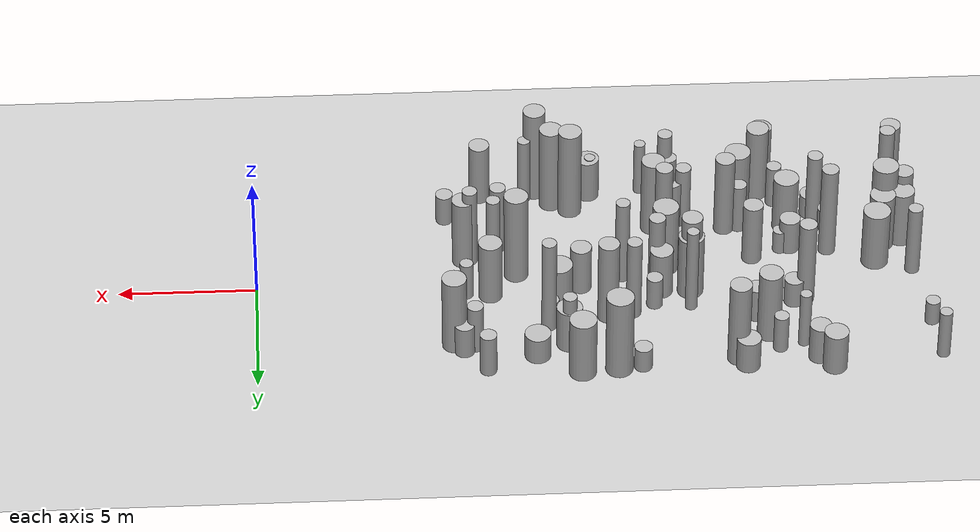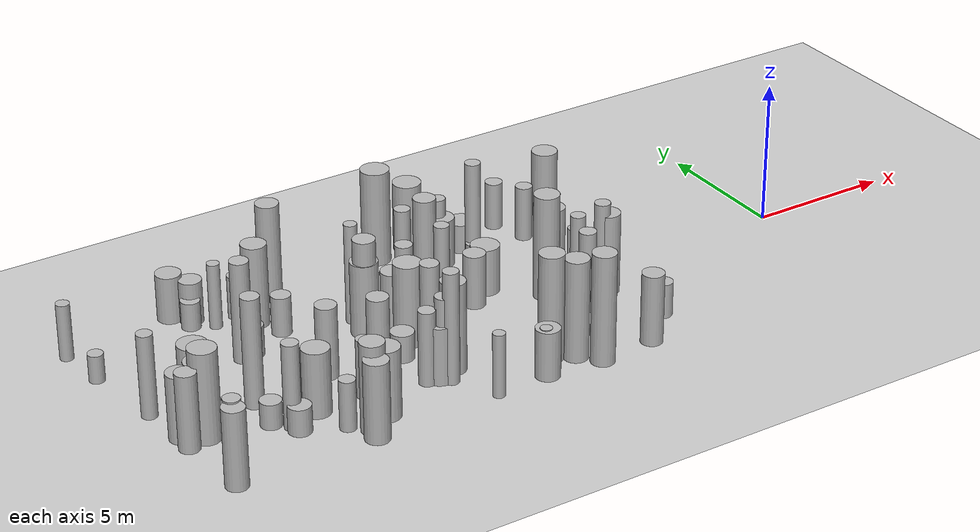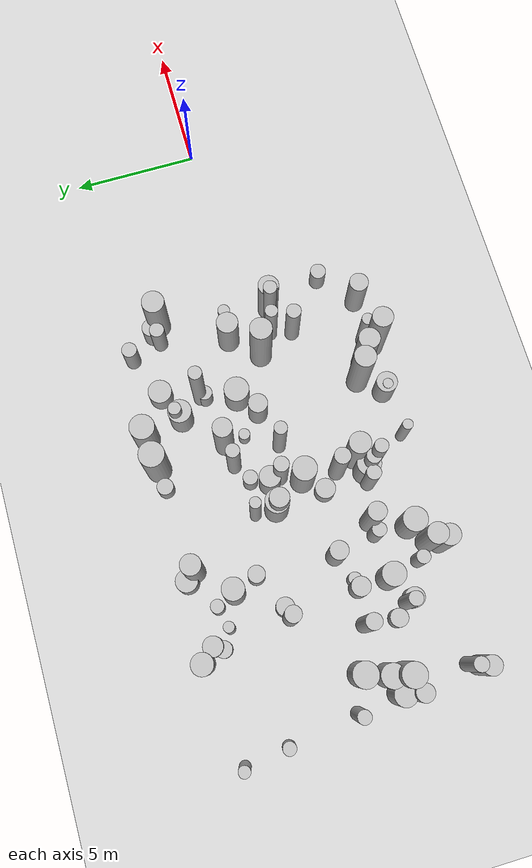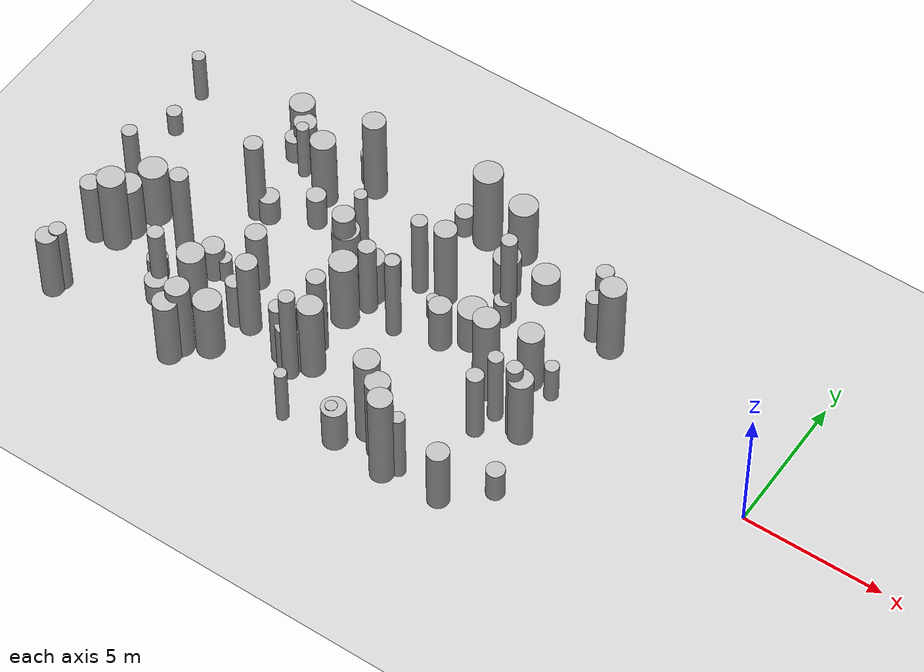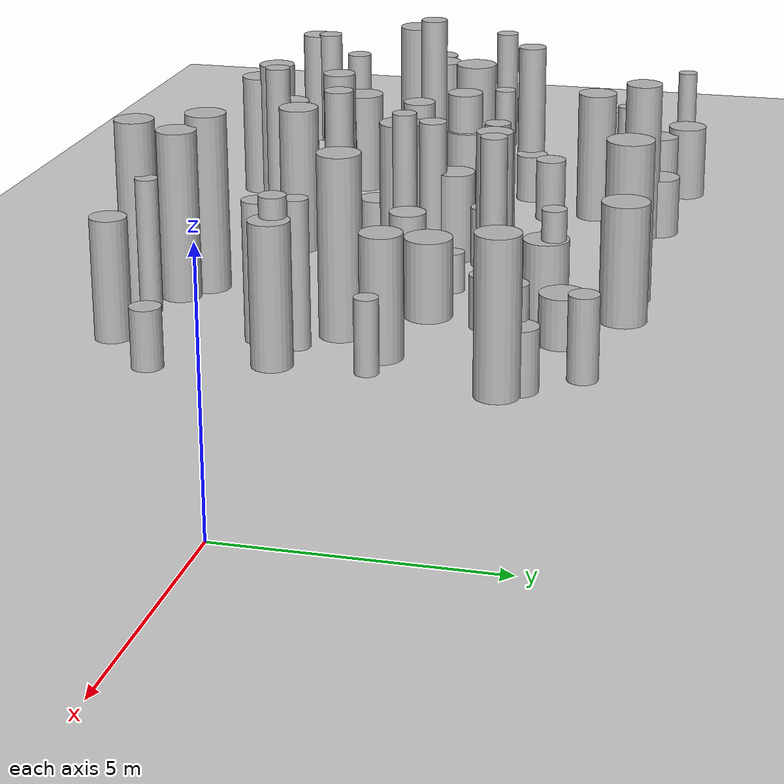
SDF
<sdf version="1.4">
 <world name="default">
  <include><uri>model://ground_plane</uri></include>
  <include><uri>model://sun</uri></include>
  <model name="forest">
   <static>true</static>
   <link name="cylinder2">
    <pose>-14.566319184506593 0.7028453761987299 0.9826855995600178 0 0 0</pose>
    <visual name="visual">
     <geometry>
      <cylinder><radius>0.42092513275544663</radius><length>1.9653711991200356</length></cylinder>
     </geometry>
    </visual>
    <collision name="collision">
     <geometry>
      <cylinder><radius>0.42092513275544663</radius><length>1.9653711991200356</length></cylinder>
     </geometry>
     <max_contacts>0</max_contacts>
    </collision>
   </link>
   <link name="cylinder8">
    <pose>-7.0236360223681125 3.224380381597209 1.5857802473510327 0 0 0</pose>
    <visual name="visual">
     <geometry>
      <cylinder><radius>0.4432136314929549</radius><length>3.1715604947020655</length></cylinder>
     </geometry>
    </visual>
    <collision name="collision">
     <geometry>
      <cylinder><radius>0.4432136314929549</radius><length>3.1715604947020655</length></cylinder>
     </geometry>
     <max_contacts>0</max_contacts>
    </collision>
   </link>
   <link name="cylinder18">
    <pose>-10.430794908742518 2.4155092818971093 1.9922489770107052 0 0 0</pose>
    <visual name="visual">
     <geometry>
      <cylinder><radius>0.26564784858792667</radius><length>3.9844979540214105</length></cylinder>
     </geometry>
    </visual>
    <collision name="collision">
     <geometry>
      <cylinder><radius>0.26564784858792667</radius><length>3.9844979540214105</length></cylinder>
     </geometry>
     <max_contacts>0</max_contacts>
    </collision>
   </link>
   <link name="cylinder23">
    <pose>-11.113900278116361 3.506994385561457 1.1926996139202175 0 0 0</pose>
    <visual name="visual">
     <geometry>
      <cylinder><radius>0.25347930996211976</radius><length>2.385399227840435</length></cylinder>
     </geometry>
    </visual>
    <collision name="collision">
     <geometry>
      <cylinder><radius>0.25347930996211976</radius><length>2.385399227840435</length></cylinder>
     </geometry>
     <max_contacts>0</max_contacts>
    </collision>
   </link>
   <link name="cylinder24">
    <pose>-12.494464114637355 1.1501678156684978 0.4267576999208971 0 0 0</pose>
    <visual name="visual">
     <geometry>
      <cylinder><radius>0.22525729497200683</radius><length>0.8535153998417943</length></cylinder>
     </geometry>
    </visual>
    <collision name="collision">
     <geometry>
      <cylinder><radius>0.22525729497200683</radius><length>0.8535153998417943</length></cylinder>
     </geometry>
     <max_contacts>0</max_contacts>
    </collision>
   </link>
   <link name="cylinder30">
    <pose>-9.961078980103949 3.9041506113809135 0.5276463428228065 0 0 0</pose>
    <visual name="visual">
     <geometry>
      <cylinder><radius>0.47039764107652066</radius><length>1.055292685645613</length></cylinder>
     </geometry>
    </visual>
    <collision name="collision">
     <geometry>
      <cylinder><radius>0.47039764107652066</radius><length>1.055292685645613</length></cylinder>
     </geometry>
     <max_contacts>0</max_contacts>
    </collision>
   </link>
   <link name="cylinder33">
    <pose>-11.503773523743948 -3.86456465136495 1.8933477084865609 0 0 0</pose>
    <visual name="visual">
     <geometry>
      <cylinder><radius>0.4279755908942054</radius><length>3.7866954169731217</length></cylinder>
     </geometry>
    </visual>
    <collision name="collision">
     <geometry>
      <cylinder><radius>0.4279755908942054</radius><length>3.7866954169731217</length></cylinder>
     </geometry>
     <max_contacts>0</max_contacts>
    </collision>
   </link>
   <link name="cylinder37">
    <pose>-14.919958367531716 -3.377166467839172 1.9728194324279933 0 0 0</pose>
    <visual name="visual">
     <geometry>
      <cylinder><radius>0.2671299328466602</radius><length>3.9456388648559866</length></cylinder>
     </geometry>
    </visual>
    <collision name="collision">
     <geometry>
      <cylinder><radius>0.2671299328466602</radius><length>3.9456388648559866</length></cylinder>
     </geometry>
     <max_contacts>0</max_contacts>
    </collision>
   </link>
   <link name="cylinder40">
    <pose>-19.003075502211548 -3.975678212042615 0.871332757629638 0 0 0</pose>
    <visual name="visual">
     <geometry>
      <cylinder><radius>0.2714177743334837</radius><length>1.742665515259276</length></cylinder>
     </geometry>
    </visual>
    <collision name="collision">
     <geometry>
      <cylinder><radius>0.2714177743334837</radius><length>1.742665515259276</length></cylinder>
     </geometry>
     <max_contacts>0</max_contacts>
    </collision>
   </link>
   <link name="cylinder43">
    <pose>-14.471069798430447 -2.783552739605298 1.6023824915551828 0 0 0</pose>
    <visual name="visual">
     <geometry>
      <cylinder><radius>0.42628796045596007</radius><length>3.2047649831103655</length></cylinder>
     </geometry>
    </visual>
    <collision name="collision">
     <geometry>
      <cylinder><radius>0.42628796045596007</radius><length>3.2047649831103655</length></cylinder>
     </geometry>
     <max_contacts>0</max_contacts>
    </collision>
   </link>
   <link name="cylinder45">
    <pose>-15.134815938974638 -3.0454822984439778 1.0191008471254641 0 0 0</pose>
    <visual name="visual">
     <geometry>
      <cylinder><radius>0.47265679621448126</radius><length>2.0382016942509282</length></cylinder>
     </geometry>
    </visual>
    <collision name="collision">
     <geometry>
      <cylinder><radius>0.47265679621448126</radius><length>2.0382016942509282</length></cylinder>
     </geometry>
     <max_contacts>0</max_contacts>
    </collision>
   </link>
   <link name="cylinder48">
    <pose>-17.614040983702385 -2.6518937314884603 1.025482181448625 0 0 0</pose>
    <visual name="visual">
     <geometry>
      <cylinder><radius>0.28169031691605056</radius><length>2.05096436289725</length></cylinder>
     </geometry>
    </visual>
    <collision name="collision">
     <geometry>
      <cylinder><radius>0.28169031691605056</radius><length>2.05096436289725</length></cylinder>
     </geometry>
     <max_contacts>0</max_contacts>
    </collision>
   </link>
   <link name="cylinder50">
    <pose>-23.339157137945804 -4.9439633344894816 1.3639078894915722 0 0 0</pose>
    <visual name="visual">
     <geometry>
      <cylinder><radius>0.37375193587891997</radius><length>2.7278157789831443</length></cylinder>
     </geometry>
    </visual>
    <collision name="collision">
     <geometry>
      <cylinder><radius>0.37375193587891997</radius><length>2.7278157789831443</length></cylinder>
     </geometry>
     <max_contacts>0</max_contacts>
    </collision>
   </link>
   <link name="cylinder53">
    <pose>-23.48289043818395 -1.7341038883323856 1.1600301535751878 0 0 0</pose>
    <visual name="visual">
     <geometry>
      <cylinder><radius>0.4289087387838289</radius><length>2.3200603071503756</length></cylinder>
     </geometry>
    </visual>
    <collision name="collision">
     <geometry>
      <cylinder><radius>0.4289087387838289</radius><length>2.3200603071503756</length></cylinder>
     </geometry>
     <max_contacts>0</max_contacts>
    </collision>
   </link>
   <link name="cylinder55">
    <pose>-19.306139237631708 1.4754266966918284 0.5423400526042698 0 0 0</pose>
    <visual name="visual">
     <geometry>
      <cylinder><radius>0.3595567008579257</radius><length>1.0846801052085395</length></cylinder>
     </geometry>
    </visual>
    <collision name="collision">
     <geometry>
      <cylinder><radius>0.3595567008579257</radius><length>1.0846801052085395</length></cylinder>
     </geometry>
     <max_contacts>0</max_contacts>
    </collision>
   </link>
   <link name="cylinder63">
    <pose>-19.390649685770157 -1.443232406159173 0.7014354620296043 0 0 0</pose>
    <visual name="visual">
     <geometry>
      <cylinder><radius>0.37918107197054185</radius><length>1.4028709240592085</length></cylinder>
     </geometry>
    </visual>
    <collision name="collision">
     <geometry>
      <cylinder><radius>0.37918107197054185</radius><length>1.4028709240592085</length></cylinder>
     </geometry>
     <max_contacts>0</max_contacts>
    </collision>
   </link>
   <link name="cylinder68">
    <pose>-14.423027307600734 0.23832079863513655 1.5465362854627644 0 0 0</pose>
    <visual name="visual">
     <geometry>
      <cylinder><radius>0.2976358405482731</radius><length>3.093072570925529</length></cylinder>
     </geometry>
    </visual>
    <collision name="collision">
     <geometry>
      <cylinder><radius>0.2976358405482731</radius><length>3.093072570925529</length></cylinder>
     </geometry>
     <max_contacts>0</max_contacts>
    </collision>
   </link>
   <link name="cylinder69">
    <pose>-20.165813965108065 4.0985370996202395 0.49663304973153194 0 0 0</pose>
    <visual name="visual">
     <geometry>
      <cylinder><radius>0.32675639379643207</radius><length>0.9932660994630639</length></cylinder>
     </geometry>
    </visual>
    <collision name="collision">
     <geometry>
      <cylinder><radius>0.32675639379643207</radius><length>0.9932660994630639</length></cylinder>
     </geometry>
     <max_contacts>0</max_contacts>
    </collision>
   </link>
   <link name="cylinder70">
    <pose>-20.868031552643117 -2.533850455858669 0.44335175028623147 0 0 0</pose>
    <visual name="visual">
     <geometry>
      <cylinder><radius>0.35519821692867615</radius><length>0.8867035005724629</length></cylinder>
     </geometry>
    </visual>
    <collision name="collision">
     <geometry>
      <cylinder><radius>0.35519821692867615</radius><length>0.8867035005724629</length></cylinder>
     </geometry>
     <max_contacts>0</max_contacts>
    </collision>
   </link>
   <link name="cylinder71">
    <pose>-20.391767346869727 -3.0314551996646575 1.4980999452841675 0 0 0</pose>
    <visual name="visual">
     <geometry>
      <cylinder><radius>0.2773907891345589</radius><length>2.996199890568335</length></cylinder>
     </geometry>
    </visual>
    <collision name="collision">
     <geometry>
      <cylinder><radius>0.2773907891345589</radius><length>2.996199890568335</length></cylinder>
     </geometry>
     <max_contacts>0</max_contacts>
    </collision>
   </link>
   <link name="cylinder73">
    <pose>-7.370926659879757 3.579654666507505 0.6430692436108179 0 0 0</pose>
    <visual name="visual">
     <geometry>
      <cylinder><radius>0.3636783163257552</radius><length>1.2861384872216357</length></cylinder>
     </geometry>
    </visual>
    <collision name="collision">
     <geometry>
      <cylinder><radius>0.3636783163257552</radius><length>1.2861384872216357</length></cylinder>
     </geometry>
     <max_contacts>0</max_contacts>
    </collision>
   </link>
   <link name="cylinder77">
    <pose>-19.963547473010497 4.448358914176726 0.767138783690235 0 0 0</pose>
    <visual name="visual">
     <geometry>
      <cylinder><radius>0.39100425804760275</radius><length>1.53427756738047</length></cylinder>
     </geometry>
    </visual>
    <collision name="collision">
     <geometry>
      <cylinder><radius>0.39100425804760275</radius><length>1.53427756738047</length></cylinder>
     </geometry>
     <max_contacts>0</max_contacts>
    </collision>
   </link>
   <link name="cylinder78">
    <pose>-13.20160754078895 -0.0830493010089377 1.7875002070733899 0 0 0</pose>
    <visual name="visual">
     <geometry>
      <cylinder><radius>0.2561081950243054</radius><length>3.5750004141467797</length></cylinder>
     </geometry>
    </visual>
    <collision name="collision">
     <geometry>
      <cylinder><radius>0.2561081950243054</radius><length>3.5750004141467797</length></cylinder>
     </geometry>
     <max_contacts>0</max_contacts>
    </collision>
   </link>
   <link name="cylinder79">
    <pose>-8.78022704950251 -1.9174426073536264 1.4422593523172762 0 0 0</pose>
    <visual name="visual">
     <geometry>
      <cylinder><radius>0.29280142427542655</radius><length>2.8845187046345524</length></cylinder>
     </geometry>
    </visual>
    <collision name="collision">
     <geometry>
      <cylinder><radius>0.29280142427542655</radius><length>2.8845187046345524</length></cylinder>
     </geometry>
     <max_contacts>0</max_contacts>
    </collision>
   </link>
   <link name="cylinder80">
    <pose>-15.057319476177494 -3.1597643583015 1.50444465342989 0 0 0</pose>
    <visual name="visual">
     <geometry><cylinder><radius>0.2894952948640372</radius><length>3.00888930685978</length></cylinder></geometry>
    </visual>
    <collision name="collision">
     <geometry><cylinder><radius>0.2894952948640372</radius><length>3.00888930685978</length></cylinder></geometry>
     <max_contacts>0</max_contacts>
    </collision>
   </link>
   <link name="cylinder84">
    <pose>-7.510002033769503 -1.2627982842625673 1.4591379763917094 0 0 0</pose>
    <visual name="visual">
     <geometry>
      <cylinder><radius>0.40943335809178305</radius><length>2.918275952783419</length></cylinder>
     </geometry>
    </visual>
    <collision name="collision">
     <geometry>
      <cylinder><radius>0.40943335809178305</radius><length>2.918275952783419</length></cylinder>
     </geometry>
     <max_contacts>0</max_contacts>
    </collision>
   </link>
   <link name="cylinder85">
    <pose>-22.428810283844424 -0.5667853174805417 1.202391158538445 0 0 0</pose>
    <visual name="visual">
     <geometry><cylinder><radius>0.4937334557329827</radius><length>2.40478231707689</length></cylinder></geometry>
    </visual>
    <collision name="collision">
     <geometry><cylinder><radius>0.4937334557329827</radius><length>2.40478231707689</length></cylinder></geometry>
     <max_contacts>0</max_contacts>
    </collision>
   </link>
   <link name="cylinder89">
    <pose>-11.113264922677535 3.3518798816660773 0.8726313053198396 0 0 0</pose>
    <visual name="visual">
     <geometry>
      <cylinder><radius>0.4664649839996773</radius><length>1.7452626106396791</length></cylinder>
     </geometry>
    </visual>
    <collision name="collision">
     <geometry>
      <cylinder><radius>0.4664649839996773</radius><length>1.7452626106396791</length></cylinder>
     </geometry>
     <max_contacts>0</max_contacts>
    </collision>
   </link>
   <link name="cylinder91">
    <pose>-10.250745611023454 -4.932685812237344 1.9586394836863317 0 0 0</pose>
    <visual name="visual">
     <geometry>
      <cylinder><radius>0.4076547631145858</radius><length>3.9172789673726633</length></cylinder>
     </geometry>
    </visual>
    <collision name="collision">
     <geometry>
      <cylinder><radius>0.4076547631145858</radius><length>3.9172789673726633</length></cylinder>
     </geometry>
     <max_contacts>0</max_contacts>
    </collision>
   </link>
   <link name="cylinder92">
    <pose>-12.578372749424133 1.9805506755536149 1.739251106344664 0 0 0</pose>
    <visual name="visual">
     <geometry>
      <cylinder><radius>0.3822702057000762</radius><length>3.478502212689328</length></cylinder>
     </geometry>
    </visual>
    <collision name="collision">
     <geometry>
      <cylinder><radius>0.3822702057000762</radius><length>3.478502212689328</length></cylinder>
     </geometry>
     <max_contacts>0</max_contacts>
    </collision>
   </link>
   <link name="cylinder95">
    <pose>-17.976783387011825 -0.9387285256849065 1.2737165180536838 0 0 0</pose>
    <visual name="visual">
     <geometry>
      <cylinder><radius>0.3621169185394072</radius><length>2.5474330361073676</length></cylinder>
     </geometry>
    </visual>
    <collision name="collision">
     <geometry>
      <cylinder><radius>0.3621169185394072</radius><length>2.5474330361073676</length></cylinder>
     </geometry>
     <max_contacts>0</max_contacts>
    </collision>
   </link>
   <link name="cylinder97">
    <pose>-19.025995021560266 -1.3533691423489569 0.4696846900667888 0 0 0</pose>
    <visual name="visual">
     <geometry>
      <cylinder><radius>0.25177067801897535</radius><length>0.9393693801335776</length></cylinder>
     </geometry>
    </visual>
    <collision name="collision">
     <geometry>
      <cylinder><radius>0.25177067801897535</radius><length>0.9393693801335776</length></cylinder>
     </geometry>
     <max_contacts>0</max_contacts>
    </collision>
   </link>
   <link name="cylinder108">
    <pose>-18.268168410941616 3.171330956501059 1.4633586836667556 0 0 0</pose>
    <visual name="visual">
     <geometry>
      <cylinder><radius>0.43181546055714903</radius><length>2.926717367333511</length></cylinder>
     </geometry>
    </visual>
    <collision name="collision">
     <geometry>
      <cylinder><radius>0.43181546055714903</radius><length>2.926717367333511</length></cylinder>
     </geometry>
     <max_contacts>0</max_contacts>
    </collision>
   </link>
   <link name="cylinder111">
    <pose>-23.574563466632707 -2.379174157336098 1.3429333947595075 0 0 0</pose>
    <visual name="visual">
     <geometry>
      <cylinder><radius>0.34812483642246767</radius><length>2.685866789519015</length></cylinder>
     </geometry>
    </visual>
    <collision name="collision">
     <geometry>
      <cylinder><radius>0.34812483642246767</radius><length>2.685866789519015</length></cylinder>
     </geometry>
     <max_contacts>0</max_contacts>
    </collision>
   </link>
   <link name="cylinder117">
    <pose>-12.210336348332284 -4.729263539588812 0.871427749418527 0 0 0</pose>
    <visual name="visual">
     <geometry>
      <cylinder><radius>0.41497765760517946</radius><length>1.742855498837054</length></cylinder>
     </geometry>
    </visual>
    <collision name="collision">
     <geometry>
      <cylinder><radius>0.41497765760517946</radius><length>1.742855498837054</length></cylinder>
     </geometry>
     <max_contacts>0</max_contacts>
    </collision>
   </link>
   <link name="cylinder120">
    <pose>-14.818770475129849 -1.9667693017113819 1.7720636650846833 0 0 0</pose>
    <visual name="visual">
     <geometry>
      <cylinder><radius>0.3161957747777382</radius><length>3.5441273301693665</length></cylinder>
     </geometry>
    </visual>
    <collision name="collision">
     <geometry>
      <cylinder><radius>0.3161957747777382</radius><length>3.5441273301693665</length></cylinder>
     </geometry>
     <max_contacts>0</max_contacts>
    </collision>
   </link>
   <link name="cylinder121">
    <pose>-8.583823939126876 -1.0687244335817523 1.5201878213966775 0 0 0</pose>
    <visual name="visual">
     <geometry>
      <cylinder><radius>0.25202554625719364</radius><length>3.040375642793355</length></cylinder>
     </geometry>
    </visual>
    <collision name="collision">
     <geometry>
      <cylinder><radius>0.25202554625719364</radius><length>3.040375642793355</length></cylinder>
     </geometry>
     <max_contacts>0</max_contacts>
    </collision>
   </link>
   <link name="cylinder126">
    <pose>-6.893795895478288 -3.5553254540981127 0.6147771614823789 0 0 0</pose>
    <visual name="visual">
     <geometry>
      <cylinder><radius>0.31422826179308927</radius><length>1.2295543229647579</length></cylinder>
     </geometry>
    </visual>
    <collision name="collision">
     <geometry>
      <cylinder><radius>0.31422826179308927</radius><length>1.2295543229647579</length></cylinder>
     </geometry>
     <max_contacts>0</max_contacts>
    </collision>
   </link>
   <link name="cylinder127">
    <pose>-20.309012653078966 -3.327698220587463 0.4731001317668506 0 0 0</pose>
    <visual name="visual">
     <geometry>
      <cylinder><radius>0.38576065474667487</radius><length>0.9462002635337012</length></cylinder>
     </geometry>
    </visual>
    <collision name="collision">
     <geometry>
      <cylinder><radius>0.38576065474667487</radius><length>0.9462002635337012</length></cylinder>
     </geometry>
     <max_contacts>0</max_contacts>
    </collision>
   </link>
   <link name="cylinder129">
    <pose>-19.727770952109424 1.366550793281319 1.7839110162736556 0 0 0</pose>
    <visual name="visual">
     <geometry>
      <cylinder><radius>0.31844904528082896</radius><length>3.567822032547311</length></cylinder>
     </geometry>
    </visual>
    <collision name="collision">
     <geometry>
      <cylinder><radius>0.31844904528082896</radius><length>3.567822032547311</length></cylinder>
     </geometry>
     <max_contacts>0</max_contacts>
    </collision>
   </link>
   <link name="cylinder131">
    <pose>-8.174026665530263 4.625425480524498 0.8560704872950384 0 0 0</pose>
    <visual name="visual">
     <geometry>
      <cylinder><radius>0.302341733934067</radius><length>1.7121409745900769</length></cylinder>
     </geometry>
    </visual>
    <collision name="collision">
     <geometry>
      <cylinder><radius>0.302341733934067</radius><length>1.7121409745900769</length></cylinder>
     </geometry>
     <max_contacts>0</max_contacts>
    </collision>
   </link>
   <link name="cylinder132">
    <pose>-22.87027256815428 -2.1393260160152394 1.5907511105326373 0 0 0</pose>
    <visual name="visual">
     <geometry><cylinder><radius>0.46964006162672</radius><length>3.1815022210652746</length></cylinder></geometry>
    </visual>
    <collision name="collision">
     <geometry><cylinder><radius>0.46964006162672</radius><length>3.1815022210652746</length></cylinder></geometry>
     <max_contacts>0</max_contacts>
    </collision>
   </link>
   <link name="cylinder135">
    <pose>-8.409974540224152 0.6639880296789613 1.2673934897321573 0 0 0</pose>
    <visual name="visual">
     <geometry>
      <cylinder><radius>0.42849703232983205</radius><length>2.5347869794643145</length></cylinder>
     </geometry>
    </visual>
    <collision name="collision">
     <geometry>
      <cylinder><radius>0.42849703232983205</radius><length>2.5347869794643145</length></cylinder>
     </geometry>
     <max_contacts>0</max_contacts>
    </collision>
   </link>
   <link name="cylinder143">
    <pose>-17.651466216278976 -3.99394072571151 1.2354823075098285 0 0 0</pose>
    <visual name="visual">
     <geometry>
      <cylinder><radius>0.4750634753894425</radius><length>2.470964615019657</length></cylinder>
     </geometry>
    </visual>
    <collision name="collision">
     <geometry>
      <cylinder><radius>0.4750634753894425</radius><length>2.470964615019657</length></cylinder>
     </geometry>
     <max_contacts>0</max_contacts>
    </collision>
   </link>
   <link name="cylinder144">
    <pose>-12.287884584385688 -4.74308516855319 0.8848568027248198 0 0 0</pose>
    <visual name="visual">
     <geometry>
      <cylinder><radius>0.2017451877043584</radius><length>1.7697136054496396</length></cylinder>
     </geometry>
    </visual>
    <collision name="collision">
     <geometry>
      <cylinder><radius>0.2017451877043584</radius><length>1.7697136054496396</length></cylinder>
     </geometry>
     <max_contacts>0</max_contacts>
    </collision>
   </link>
   <link name="cylinder146">
    <pose>-7.555263443492592 0.5959147566698206 0.7655064027431845 0 0 0</pose>
    <visual name="visual">
     <geometry>
      <cylinder><radius>0.24103096129681448</radius><length>1.531012805486369</length></cylinder>
     </geometry>
    </visual>
    <collision name="collision">
     <geometry>
      <cylinder><radius>0.24103096129681448</radius><length>1.531012805486369</length></cylinder>
     </geometry>
     <max_contacts>0</max_contacts>
    </collision>
   </link>
   <link name="cylinder147">
    <pose>-17.396172859261846 4.773335782903752 0.6547714166977511 0 0 0</pose>
    <visual name="visual">
     <geometry>
      <cylinder><radius>0.43415032356084005</radius><length>1.3095428333955021</length></cylinder>
     </geometry>
    </visual>
    <collision name="collision">
     <geometry>
      <cylinder><radius>0.43415032356084005</radius><length>1.3095428333955021</length></cylinder>
     </geometry>
     <max_contacts>0</max_contacts>
    </collision>
   </link>
   <link name="cylinder152">
    <pose>-18.41081773173951 -4.502397251535547 1.5663914219982376 0 0 0</pose>
    <visual name="visual">
     <geometry>
      <cylinder><radius>0.4084830828362166</radius><length>3.132782843996475</length></cylinder>
     </geometry>
    </visual>
    <collision name="collision">
     <geometry>
      <cylinder><radius>0.4084830828362166</radius><length>3.132782843996475</length></cylinder>
     </geometry>
     <max_contacts>0</max_contacts>
    </collision>
   </link>
   <link name="cylinder153">
    <pose>-8.222639069351729 -4.762324186103532 1.2529639550579574 0 0 0</pose>
    <visual name="visual">
     <geometry>
      <cylinder><radius>0.37575212639952493</radius><length>2.505927910115915</length></cylinder>
     </geometry>
    </visual>
    <collision name="collision">
     <geometry>
      <cylinder><radius>0.37575212639952493</radius><length>2.505927910115915</length></cylinder>
     </geometry>
     <max_contacts>0</max_contacts>
    </collision>
   </link>
   <link name="cylinder154">
    <pose>-17.882169820118193 2.1873923330187424 0.7000254766229305 0 0 0</pose>
    <visual name="visual">
     <geometry>
      <cylinder><radius>0.3367247694638602</radius><length>1.400050953245861</length></cylinder>
     </geometry>
    </visual>
    <collision name="collision">
     <geometry>
      <cylinder><radius>0.3367247694638602</radius><length>1.400050953245861</length></cylinder>
     </geometry>
     <max_contacts>0</max_contacts>
    </collision>
   </link>
   <link name="cylinder157">
    <pose>-7.760363853920143 3.374963769200848 0.9856334205525529 0 0 0</pose>
    <visual name="visual">
     <geometry>
      <cylinder><radius>0.2913978792573846</radius><length>1.9712668411051057</length></cylinder>
     </geometry>
    </visual>
    <collision name="collision">
     <geometry>
      <cylinder><radius>0.2913978792573846</radius><length>1.9712668411051057</length></cylinder>
     </geometry>
     <max_contacts>0</max_contacts>
    </collision>
   </link>
   <link name="cylinder158">
    <pose>-14.787205269408005 -0.5603697185603842 1.4601696375674305 0 0 0</pose>
    <visual name="visual">
     <geometry>
      <cylinder><radius>0.47323315872910215</radius><length>2.920339275134861</length></cylinder>
     </geometry>
    </visual>
    <collision name="collision">
     <geometry>
      <cylinder><radius>0.47323315872910215</radius><length>2.920339275134861</length></cylinder>
     </geometry>
     <max_contacts>0</max_contacts>
    </collision>
   </link>
   <link name="cylinder168">
    <pose>-18.560359831721822 -4.978163594834073 1.3909507512964157 0 0 0</pose>
    <visual name="visual">
     <geometry>
      <cylinder><radius>0.4137922064071647</radius><length>2.7819015025928313</length></cylinder>
     </geometry>
    </visual>
    <collision name="collision">
     <geometry>
      <cylinder><radius>0.4137922064071647</radius><length>2.7819015025928313</length></cylinder>
     </geometry>
     <max_contacts>0</max_contacts>
    </collision>
   </link>
   <link name="cylinder170">
    <pose>-10.509499041535042 2.2132279809383455 0.5538503303645363 0 0 0</pose>
    <visual name="visual">
     <geometry>
      <cylinder><radius>0.2958771820832027</radius><length>1.1077006607290727</length></cylinder>
     </geometry>
    </visual>
    <collision name="collision">
     <geometry>
      <cylinder><radius>0.2958771820832027</radius><length>1.1077006607290727</length></cylinder>
     </geometry>
     <max_contacts>0</max_contacts>
    </collision>
   </link>
   <link name="cylinder175">
    <pose>-14.1297060248955 -4.884116690029226 1.1181676161608032 0 0 0</pose>
    <visual name="visual">
     <geometry>
      <cylinder><radius>0.20801738723194005</radius><length>2.2363352323216064</length></cylinder>
     </geometry>
    </visual>
    <collision name="collision">
     <geometry>
      <cylinder><radius>0.20801738723194005</radius><length>2.2363352323216064</length></cylinder>
     </geometry>
     <max_contacts>0</max_contacts>
    </collision>
   </link>
   <link name="cylinder176">
    <pose>-22.736474413103352 -1.5103719141451197 1.1766308816603264 0 0 0</pose>
    <visual name="visual">
     <geometry>
      <cylinder><radius>0.4629092923939987</radius><length>2.3532617633206527</length></cylinder>
     </geometry>
    </visual>
    <collision name="collision">
     <geometry>
      <cylinder><radius>0.4629092923939987</radius><length>2.3532617633206527</length></cylinder>
     </geometry>
     <max_contacts>0</max_contacts>
    </collision>
   </link>
   <link name="cylinder178">
    <pose>-15.589972783970108 -3.0285857496821667 1.3047950070950973 0 0 0</pose>
    <visual name="visual">
     <geometry>
      <cylinder><radius>0.28646164616189507</radius><length>2.6095900141901947</length></cylinder>
     </geometry>
    </visual>
    <collision name="collision">
     <geometry>
      <cylinder><radius>0.28646164616189507</radius><length>2.6095900141901947</length></cylinder>
     </geometry>
     <max_contacts>0</max_contacts>
    </collision>
   </link>
   <link name="cylinder180">
    <pose>-17.07861496186939 4.39891291699487 1.7539983229872242 0 0 0</pose>
    <visual name="visual">
     <geometry>
      <cylinder><radius>0.3972263021442727</radius><length>3.5079966459744485</length></cylinder>
     </geometry>
    </visual>
    <collision name="collision">
     <geometry>
      <cylinder><radius>0.3972263021442727</radius><length>3.5079966459744485</length></cylinder>
     </geometry>
     <max_contacts>0</max_contacts>
    </collision>
   </link>
   <link name="cylinder181">
    <pose>-20.746004684773176 -1.247701147604526 1.92776750226718 0 0 0</pose>
    <visual name="visual">
     <geometry><cylinder><radius>0.3101018691076304</radius><length>3.85553500453436</length></cylinder></geometry>
    </visual>
    <collision name="collision">
     <geometry><cylinder><radius>0.3101018691076304</radius><length>3.85553500453436</length></cylinder></geometry>
     <max_contacts>0</max_contacts>
    </collision>
   </link>
   <link name="cylinder185">
    <pose>-10.859793018777747 0.9951475105948182 0.843326857819537 0 0 0</pose>
    <visual name="visual">
     <geometry>
      <cylinder><radius>0.4972312603435435</radius><length>1.686653715639074</length></cylinder>
     </geometry>
    </visual>
    <collision name="collision">
     <geometry>
      <cylinder><radius>0.4972312603435435</radius><length>1.686653715639074</length></cylinder>
     </geometry>
     <max_contacts>0</max_contacts>
    </collision>
   </link>
   <link name="cylinder186">
    <pose>-15.620470703303708 0.7344710676522279 1.3106183393159754 0 0 0</pose>
    <visual name="visual">
     <geometry>
      <cylinder><radius>0.47059497703183634</radius><length>2.6212366786319508</length></cylinder>
     </geometry>
    </visual>
    <collision name="collision">
     <geometry>
      <cylinder><radius>0.47059497703183634</radius><length>2.6212366786319508</length></cylinder>
     </geometry>
     <max_contacts>0</max_contacts>
    </collision>
   </link>
   <link name="cylinder191">
    <pose>-11.684791716832699 0.3583092069076086 0.9578445086170861 0 0 0</pose>
    <visual name="visual">
     <geometry>
      <cylinder><radius>0.38165926351311774</radius><length>1.9156890172341723</length></cylinder>
     </geometry>
    </visual>
    <collision name="collision">
     <geometry>
      <cylinder><radius>0.38165926351311774</radius><length>1.9156890172341723</length></cylinder>
     </geometry>
     <max_contacts>0</max_contacts>
    </collision>
   </link>
   <link name="cylinder194">
    <pose>-22.717203130388853 -1.4050124483746407 0.8431384979701531 0 0 0</pose>
    <visual name="visual">
     <geometry>
      <cylinder><radius>0.21980344576246433</radius><length>1.6862769959403061</length></cylinder>
     </geometry>
    </visual>
    <collision name="collision">
     <geometry>
      <cylinder><radius>0.21980344576246433</radius><length>1.6862769959403061</length></cylinder>
     </geometry>
     <max_contacts>0</max_contacts>
    </collision>
   </link>
   <link name="cylinder197">
    <pose>-19.326688995668572 -2.6489303518803275 1.1476854221778727 0 0 0</pose>
    <visual name="visual">
     <geometry>
      <cylinder><radius>0.46351120286326725</radius><length>2.2953708443557455</length></cylinder>
     </geometry>
    </visual>
    <collision name="collision">
     <geometry>
      <cylinder><radius>0.46351120286326725</radius><length>2.2953708443557455</length></cylinder>
     </geometry>
     <max_contacts>0</max_contacts>
    </collision>
   </link>
   <link name="cylinder198">
    <pose>-15.597512253122597 1.5746585168933125 1.7878836486960428 0 0 0</pose>
    <visual name="visual">
     <geometry>
      <cylinder><radius>0.22136254387124868</radius><length>3.5757672973920855</length></cylinder>
     </geometry>
    </visual>
    <collision name="collision">
     <geometry>
      <cylinder><radius>0.22136254387124868</radius><length>3.5757672973920855</length></cylinder>
     </geometry>
     <max_contacts>0</max_contacts>
    </collision>
   </link>
   <link name="cylinder201">
    <pose>-9.381729636962255 -0.4225108304266687 1.8797945800716136 0 0 0</pose>
    <visual name="visual">
     <geometry>
      <cylinder><radius>0.4386785435164553</radius><length>3.759589160143227</length></cylinder>
     </geometry>
    </visual>
    <collision name="collision">
     <geometry>
      <cylinder><radius>0.4386785435164553</radius><length>3.759589160143227</length></cylinder>
     </geometry>
     <max_contacts>0</max_contacts>
    </collision>
   </link>
   <link name="cylinder202">
    <pose>-9.85725660006001 -4.576389023672142 1.410659468866538 0 0 0</pose>
    <visual name="visual">
     <geometry>
      <cylinder><radius>0.23252022906191766</radius><length>2.821318937733076</length></cylinder>
     </geometry>
    </visual>
    <collision name="collision">
     <geometry>
      <cylinder><radius>0.23252022906191766</radius><length>2.821318937733076</length></cylinder>
     </geometry>
     <max_contacts>0</max_contacts>
    </collision>
   </link>
   <link name="cylinder204">
    <pose>-12.811843965909574 4.745194479942837 1.7102249289253049 0 0 0</pose>
    <visual name="visual">
     <geometry>
      <cylinder><radius>0.4958313186790554</radius><length>3.4204498578506097</length></cylinder>
     </geometry>
    </visual>
    <collision name="collision">
     <geometry>
      <cylinder><radius>0.4958313186790554</radius><length>3.4204498578506097</length></cylinder>
     </geometry>
     <max_contacts>0</max_contacts>
    </collision>
   </link>
   <link name="cylinder209">
    <pose>-23.744937027124724 -0.049468159547937596 1.4610156742672034 0 0 0</pose>
    <visual name="visual">
     <geometry>
      <cylinder><radius>0.2650846373720668</radius><length>2.9220313485344067</length></cylinder>
     </geometry>
    </visual>
    <collision name="collision">
     <geometry>
      <cylinder><radius>0.2650846373720668</radius><length>2.9220313485344067</length></cylinder>
     </geometry>
     <max_contacts>0</max_contacts>
    </collision>
   </link>
   <link name="cylinder210">
    <pose>-24.17263984738407 2.7374042385593693 0.49039922280729703 0 0 0</pose>
    <visual name="visual">
     <geometry>
      <cylinder><radius>0.26247173881402736</radius><length>0.9807984456145941</length></cylinder>
     </geometry>
    </visual>
    <collision name="collision">
     <geometry>
      <cylinder><radius>0.26247173881402736</radius><length>0.9807984456145941</length></cylinder>
     </geometry>
     <max_contacts>0</max_contacts>
    </collision>
   </link>
   <link name="cylinder215">
    <pose>-13.50186758183694 1.8465844697586276 1.7013679762341547 0 0 0</pose>
    <visual name="visual">
     <geometry>
      <cylinder><radius>0.27146434454967927</radius><length>3.4027359524683094</length></cylinder>
     </geometry>
    </visual>
    <collision name="collision">
     <geometry>
      <cylinder><radius>0.27146434454967927</radius><length>3.4027359524683094</length></cylinder>
     </geometry>
     <max_contacts>0</max_contacts>
    </collision>
   </link>
   <link name="cylinder217">
    <pose>-13.668883794346304 4.662912034545485 0.4767054295458064 0 0 0</pose>
    <visual name="visual">
     <geometry>
      <cylinder><radius>0.3263285747458514</radius><length>0.9534108590916128</length></cylinder>
     </geometry>
    </visual>
    <collision name="collision">
     <geometry>
      <cylinder><radius>0.3263285747458514</radius><length>0.9534108590916128</length></cylinder>
     </geometry>
     <max_contacts>0</max_contacts>
    </collision>
   </link>
   <link name="cylinder219">
    <pose>-18.62332546000441 3.9098671917646914 0.7668788372589656 0 0 0</pose>
    <visual name="visual">
     <geometry>
      <cylinder><radius>0.26644545937816255</radius><length>1.533757674517931</length></cylinder>
     </geometry>
    </visual>
    <collision name="collision">
     <geometry>
      <cylinder><radius>0.26644545937816255</radius><length>1.533757674517931</length></cylinder>
     </geometry>
     <max_contacts>0</max_contacts>
    </collision>
   </link>
   <link name="cylinder222">
    <pose>-23.19077108235028 -4.566431351371463 1.3914262383520182 0 0 0</pose>
    <visual name="visual">
     <geometry>
      <cylinder><radius>0.28459323479892407</radius><length>2.7828524767040363</length></cylinder>
     </geometry>
    </visual>
    <collision name="collision">
     <geometry>
      <cylinder><radius>0.28459323479892407</radius><length>2.7828524767040363</length></cylinder>
     </geometry>
     <max_contacts>0</max_contacts>
    </collision>
   </link>
   <link name="cylinder227">
    <pose>-15.443306968705178 -1.283124032186722 0.4832590330755844 0 0 0</pose>
    <visual name="visual">
     <geometry>
      <cylinder><radius>0.3988069772416048</radius><length>0.9665180661511688</length></cylinder>
     </geometry>
    </visual>
    <collision name="collision">
     <geometry>
      <cylinder><radius>0.3988069772416048</radius><length>0.9665180661511688</length></cylinder>
     </geometry>
     <max_contacts>0</max_contacts>
    </collision>
   </link>
   <link name="cylinder232">
    <pose>-20.466610933749752 4.984333391410832 0.8381101511290985 0 0 0</pose>
    <visual name="visual">
     <geometry>
      <cylinder><radius>0.4375236037366043</radius><length>1.676220302258197</length></cylinder>
     </geometry>
    </visual>
    <collision name="collision">
     <geometry>
      <cylinder><radius>0.4375236037366043</radius><length>1.676220302258197</length></cylinder>
     </geometry>
     <max_contacts>0</max_contacts>
    </collision>
   </link>
   <link name="cylinder234">
    <pose>-7.750054612479818 -1.2557436416517662 1.6694852732779428 0 0 0</pose>
    <visual name="visual">
     <geometry>
      <cylinder><radius>0.27034991803609143</radius><length>3.3389705465558857</length></cylinder>
     </geometry>
    </visual>
    <collision name="collision">
     <geometry>
      <cylinder><radius>0.27034991803609143</radius><length>3.3389705465558857</length></cylinder>
     </geometry>
     <max_contacts>0</max_contacts>
    </collision>
   </link>
   <link name="cylinder236">
    <pose>-24.39169783760992 4.487683397626576 1.0003740685294065 0 0 0</pose>
    <visual name="visual">
     <geometry>
      <cylinder><radius>0.2310728955387457</radius><length>2.000748137058813</length></cylinder>
     </geometry>
    </visual>
    <collision name="collision">
     <geometry>
      <cylinder><radius>0.2310728955387457</radius><length>2.000748137058813</length></cylinder>
     </geometry>
     <max_contacts>0</max_contacts>
    </collision>
   </link>
   <link name="cylinder237">
    <pose>-10.820003065898447 -4.262718721006155 1.7915040619675267 0 0 0</pose>
    <visual name="visual">
     <geometry>
      <cylinder><radius>0.41608652454276496</radius><length>3.5830081239350533</length></cylinder>
     </geometry>
    </visual>
    <collision name="collision">
     <geometry>
      <cylinder><radius>0.41608652454276496</radius><length>3.5830081239350533</length></cylinder>
     </geometry>
     <max_contacts>0</max_contacts>
    </collision>
   </link>
   <link name="cylinder238">
    <pose>-11.504765756579182 4.871673295599738 1.2597283240734665 0 0 0</pose>
    <visual name="visual">
     <geometry>
      <cylinder><radius>0.49182670867618866</radius><length>2.519456648146933</length></cylinder>
     </geometry>
    </visual>
    <collision name="collision">
     <geometry>
      <cylinder><radius>0.49182670867618866</radius><length>2.519456648146933</length></cylinder>
     </geometry>
     <max_contacts>0</max_contacts>
    </collision>
   </link>
   <link name="cylinder239">
    <pose>-15.633747383561369 0.6736174063814833 1.724047495063295 0 0 0</pose>
    <visual name="visual">
     <geometry>
      <cylinder><radius>0.37961762085617634</radius><length>3.44809499012659</length></cylinder>
     </geometry>
    </visual>
    <collision name="collision">
     <geometry>
      <cylinder><radius>0.37961762085617634</radius><length>3.44809499012659</length></cylinder>
     </geometry>
     <max_contacts>0</max_contacts>
    </collision>
   </link>
   <link name="cylinder243">
    <pose>-14.286486985301805 1.4059605421025179 0.6505544469098987 0 0 0</pose>
    <visual name="visual">
     <geometry>
      <cylinder><radius>0.2918663135789377</radius><length>1.3011088938197974</length></cylinder>
     </geometry>
    </visual>
    <collision name="collision">
     <geometry>
      <cylinder><radius>0.2918663135789377</radius><length>1.3011088938197974</length></cylinder>
     </geometry>
     <max_contacts>0</max_contacts>
    </collision>
   </link>
   <link name="cylinder244">
    <pose>-19.483041983381977 3.6816227157214705 1.1674196343649723 0 0 0</pose>
    <visual name="visual">
     <geometry>
      <cylinder><radius>0.21304853479226846</radius><length>2.3348392687299446</length></cylinder>
     </geometry>
    </visual>
    <collision name="collision">
     <geometry>
      <cylinder><radius>0.21304853479226846</radius><length>2.3348392687299446</length></cylinder>
     </geometry>
     <max_contacts>0</max_contacts>
    </collision>
   </link>
   <link name="cylinder246">
    <pose>-17.076778048285895 -2.5974781238750975 1.6733070314385685 0 0 0</pose>
    <visual name="visual">
     <geometry>
      <cylinder><radius>0.36157277765749596</radius><length>3.346614062877137</length></cylinder>
     </geometry>
    </visual>
    <collision name="collision">
     <geometry>
      <cylinder><radius>0.36157277765749596</radius><length>3.346614062877137</length></cylinder>
     </geometry>
     <max_contacts>0</max_contacts>
    </collision>
   </link>
  </model>
 </world>
</sdf>
